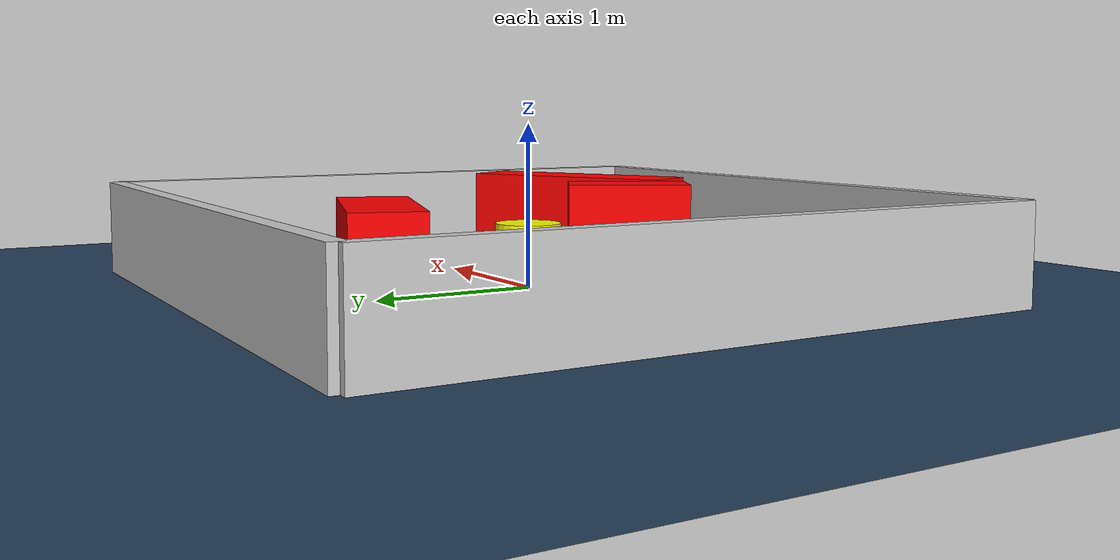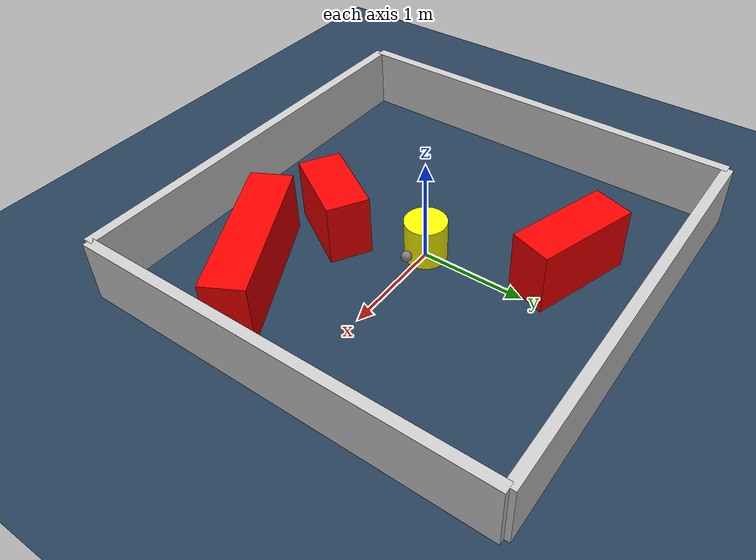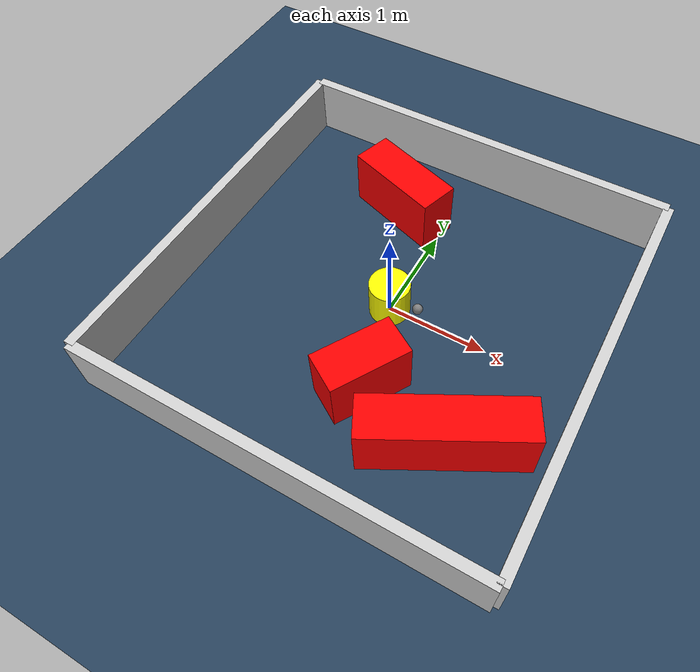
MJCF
<?xml version="1.0" ?>
<mujoco model="generated_environment">
  <option timestep="0.01" integrator="RK4" cone="elliptic"/>
  <default>
    <geom density="1"/>
  </default>
  <asset>
    <texture builtin="gradient" height="3072" rgb1="0.3 0.5 0.7" rgb2="0 0 0" type="skybox" width="512"/>
    <texture builtin="checker" height="300" mark="edge" markrgb="0.8 0.8 0.8" name="groundplane" rgb1="0.2 0.3 0.4" rgb2="0.1 0.2 0.3" type="2d" width="300"/>
    <material name="groundplane" reflectance="0.2" texrepeat="5 5" texture="groundplane" texuniform="true"/>
    <material name="robot" rgba="0.0 1.0 0.0 1"/>
  </asset>
  <worldbody>
    <light dir="0 0 -1" directional="true" pos="0 0 1.5"/>
    <geom condim="4" friction="1.0 0.005 0.001" material="groundplane" name="floor" size="0 0 0.05" type="plane"/>
    <body name="walls">
      <geom name="wall_1" condim="4" pos="-2.0 0.0 0.3" rgba="0.800000011920929 0.800000011920929 0.800000011920929 1.0" size="0.05 2.0 0.3" type="box"/>
      <geom name="wall_2" condim="4" pos="2.0 0.0 0.3" rgba="0.800000011920929 0.800000011920929 0.800000011920929 1.0" size="0.05 2.0 0.3" type="box"/>
      <geom name="wall_3" condim="4" pos="0.0 -2.0 0.3" rgba="0.800000011920929 0.800000011920929 0.800000011920929 1.0" size="2.0 0.05 0.3" type="box"/>
      <geom name="wall_4" condim="4" pos="0.0 2.0 0.3" rgba="0.800000011920929 0.800000011920929 0.800000011920929 1.0" size="2.0 0.05 0.3" type="box"/>
    </body>
    <body name="robot">
      <joint name="joint_x" type="slide" pos="0 0 0" axis="1 0 0"/>
      <joint name="joint_y" type="slide" pos="0 0 0" axis="0 1 0"/>
      <geom name="robot" type="sphere" pos="0.3 0.0 0.2" size="0.05" mass="5." friction="1.0 0.005 0.0001" condim="4" rgba="0.5 0.5 0.5 1.0"/>
      <site name="sensor_ball"/>
    </body>
    <body name="obstacle_movable_1">
      <geom name="obstacle_movable_1" condim="4" pos="0.0 0.0 0.2" euler="0 0 0.0" friction="1.0 0.005 0.001" rgba="1.0 1.0 0.0 1.0" size="0.2 0.2 0.0" type="cylinder" mass="0.1"/>
      <joint type="free"/>
    </body>
    <body name="obstacle_2_static">
      <geom name="obstacle_2_static" condim="4" pos="0.20663074925586344 -0.8755144879454013 0.3" euler="0 0 59.13738547823838" friction="1.0 0.005 0.001" rgba="1 0 0 1" size="0.3899547318411488 0.2 0.3" type="box"/>
    </body>
    <body name="obstacle_3_static">
      <geom name="obstacle_3_static" condim="4" pos="-0.4843138962790128 1.1801702713671467 0.3" euler="0 0 161.84284245025853" friction="1.0 0.005 0.001" rgba="1 0 0 1" size="0.49978023102794467 0.2 0.3" type="box"/>
    </body>
    <body name="obstacle_4_static">
      <geom name="obstacle_4_static" condim="4" pos="1.1080752495919683 -1.0486252767472557 0.3" euler="0 0 27.900566341107496" friction="1.0 0.005 0.001" rgba="1 0 0 1" size="0.752246705088818 0.2 0.3" type="box"/>
    </body>
  </worldbody>
  <actuator>
    <motor name="actuator_x" joint="joint_x" gear="1" ctrlrange="-1 1"/>
    <motor name="actuator_y" joint="joint_y" gear="1" ctrlrange="-1 1"/>
  </actuator>
</mujoco>
